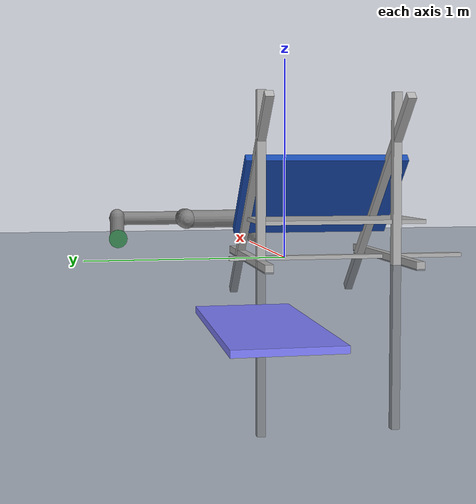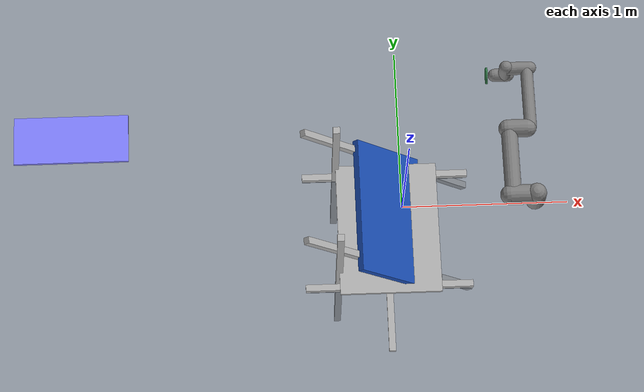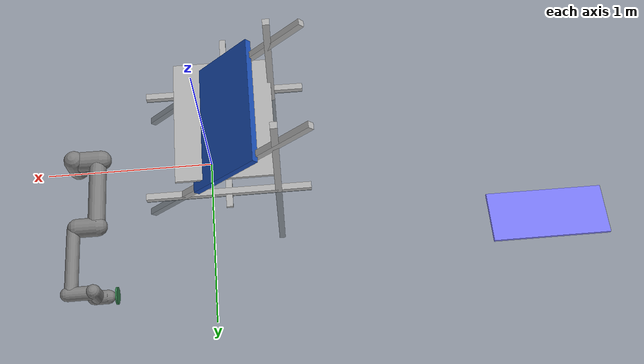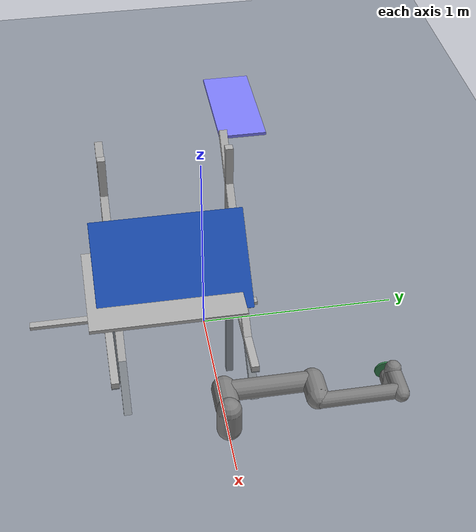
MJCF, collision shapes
<mujoco model="ur5e scene">
  <include file="ur5e.xml"/>
  <option gravity="0 0 -9.81" />
  <statistic center="0.3 0 0.3" extent="0.8" meansize="0.08"/>

  <visual>
    <headlight diffuse="0.6 0.6 0.6" ambient="0.1 0.1 0.1" specular="0 0 0"/>
    <global azimuth="120" elevation="-20"/>
  </visual>

  <asset>
    <texture name="grid" type="2d" builtin="checker" rgb1=".2 .3 .4" rgb2=".1 0.15 0.2" width="512" height="512"
      mark="cross" markrgb=".8 .8 .8"/>
    <material name="grid" texture="grid" texrepeat="1 1" texuniform="true"/>
    <material name="metal_material" rgba="0.7 0.7 0.7 1" specular="0.6" shininess="0.4"/>
    <material name="geom_material" rgba="0.1 0.3 0.7 0.4" specular="0.6" shininess="0.84"/>

  </asset>

  <worldbody>
      <light pos="0 0 10" directional="true"/>
        <body name="slab_mocap" pos="-2 0.5 0.01">
            <joint name="slab_free" type="free"/>
            <geom name="slab" type="box" size="0.35 0.15 0.01" rgba="0.5 0.5 1 0.3" contype="1" conaffinity="1" solimp="0.9 0.95 0.001" solref="0.02 1"/>
        </body>
        <geom type="plane" size="10 10 0.1" rgba="0.5 0.5 0.5 1" pos="0 0 0" contype="1" conaffinity="1" solimp="0.99 0.99 0.01" solref="0.02 1"
      friction="1 0.005 0.0001" material="grid"/>

        <body name="frame_base" pos="-0.1 -0.3 0" quat="0.7 0 0 0.7">
            <inertial pos="0 0 0" mass="1.0" diaginertia="0.001 0.001 0.001"/>
            <geom name="base_beam" type="box" size="0.6 0.02 0.01" pos="0 0 0.01" material="metal_material" contype="1" conaffinity="1"
                  solref="0.02 1" solimp="0.9 0.95 0.01" friction="1 0.005 0.0001"/>
            <geom name="base_stage" type="box" size="0.4 0.3 0.01" pos="0.1 0 0.2" material="metal_material" contype="1" conaffinity="1"
                  solref="0.02 1" solimp="0.9 0.95 0.01" friction="1 0.005 0.0001"/>
            <body name="horizontal_support1" pos="0 0 0.01">
                <inertial pos="0 0 0" mass="1.0" diaginertia="0.001 0.001 0.001"/>
                <geom name="horizontal_beam1" type="box" size="0.02 0.5 0.02" pos="-0.20 0 0" material="metal_material" quat="0.7 0 0.7 0" contype="1" conaffinity="1"
                      solref="0.02 1" solimp="0.9 0.95 0.01" friction="1 0.005 0.0001"/>

                <body name="vertical_support1" pos="0 0 0">
                    <inertial pos="0 0 0" mass="1.0" diaginertia="0.001 0.001 0.001"/>
                    <geom name="vertical_beam1" type="box" size="0.02 0.8 0.02" pos="-0.15 0.3 0" material="metal_material" quat="0 0 0.7 0.7" contype="1" conaffinity="1"
                          solref="0.02 1" solimp="0.9 0.95 0.01" friction="1 0.005 0.0001"/>
                    <body name="angled_bar2" pos="0 0 0.1">
                    <inertial pos="0 0 0" mass="1.0" diaginertia="0.001 0.001 0.001"/>
                    <geom name="angled_beam2" type="box" size="0.02 0.7 0.02" pos="-0.15 0 0.175" quat="0.92 0.38 0 0" material="metal_material" contype="1" conaffinity="1"
                          solref="0.02 1" solimp="0.9 0.95 0.01" friction="1 0.005 0.0001"/>
                    <geom name="some_geom" type="box" size="0.4 0.26 0.02" pos="0.15 0 0.21" quat="0.92 0.38 0 0" material="geom_material" contype="2" conaffinity="2"
                          solref="0.02 1" solimp="0.9 0.95 0.01" friction="1 0.005 0.0001"/>
                </body>

                </body>
            </body>

            <body name="horizontal_support2" pos="0 0 0.01">
                <inertial pos="0 0 0" mass="1.0" diaginertia="0.001 0.001 0.001"/>
                <geom name="horizontal_beam2" type="box" size="0.02 0.5 0.02" pos="0.5 0 0" material="metal_material" quat="-0.7 0 0.7 0" contype="1" conaffinity="1"
                      solref="0.02 1" solimp="0.9 0.95 0.01" friction="1 0.005 0.0001"/>

                <body name="angled_bar3" pos="0.8 0 0.1">
                    <inertial pos="0 0 0" mass="1.0" diaginertia="0.001 0.001 0.001"/>
                    <geom name="angled_beam3" type="box" size="0.02 0.7 0.02" pos="-0.3 0 0.175" quat="0.92 0.38 0 0" material="metal_material" contype="1" conaffinity="1"
                          solref="0.02 1" solimp="0.9 0.95 0.01" friction="1 0.005 0.0001"/>
                </body>

                <body name="vertical_support2" pos="0 0 0">
                    <inertial pos="0 0 0" mass="1.0" diaginertia="0.001 0.001 0.001"/>
                    <geom name="vertical_beam2" type="box" size="0.02 0.8 0.02" pos="0.5 0.3 0" material="metal_material" quat="0 0 -0.7 0.7" contype="1" conaffinity="1"
                          solref="0.02 1" solimp="0.9 0.95 0.01" friction="1 0.005 0.0001"/>
                </body>
            </body>
        </body>
</worldbody>
  <keyframe>
    <key name="home" qpos="-1.5708 -1.5708 1.5708 -1.5708 -1.5708 0 0 1 0.5 0.01 0 0 0 0" ctrl="2.89 -2.07 -1.89 -0.88 -4.97 -0.3 0"/>
  </keyframe>
</mujoco>

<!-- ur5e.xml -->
<mujoco model="ur5e">
  <compiler angle="radian" meshdir="assets" autolimits="true"/>
  <option integrator="implicitfast"/>

  <default>
    <default class="ur5e">
      <material specular="0.5" shininess="0.25"/>
      <joint axis="0 1 0" range="-6.28319 6.28319" armature="0.1"/>
      <general gaintype="fixed" biastype="affine" ctrlrange="-6.2831 6.2831" gainprm="2000" biasprm="0 -2000 -400"
        forcerange="-150 150"/>
      <default class="size3">
        <default class="size3_limited">
          <joint range="-3.1415 3.1415"/>
          <general ctrlrange="-3.1415 3.1415"/>
        </default>
      </default>
      <default class="size1">
        <general gainprm="500" biasprm="0 -500 -100" forcerange="-28 28"/>
      </default>
      <default class="visual">
        <geom type="mesh" contype="0" conaffinity="0" group="2"/>
      </default>
      <default class="collision">
        <geom type="capsule" group="3"/>
        <default class="eef_collision">
          <geom type="cylinder"/>
        </default>
      </default>
      <default class="active_adhesion">
      <geom rgba=".1 0 .5 1" margin=".01" gap=".01" size="3.4 3.4 3.4" />
      </default>

      <site size="0.001" rgba="0.5 0.5 0.5 0.3" group="4"/>
    </default>
  </default>

  <asset>
    <material class="ur5e" name="black" rgba="0.033 0.033 0.033 1"/>
    <material class="ur5e" name="jointgray" rgba="0.278 0.278 0.278 1"/>
    <material class="ur5e" name="linkgray" rgba="0.82 0.82 0.82 1"/>
    <material class="ur5e" name="urblue" rgba="0.49 0.678 0.8 1"/>

    <mesh file="base_0.obj"/>
    <mesh file="base_1.obj"/>
    <mesh file="shoulder_0.obj"/>
    <mesh file="shoulder_1.obj"/>
    <mesh file="shoulder_2.obj"/>
    <mesh file="upperarm_0.obj"/>
    <mesh file="upperarm_1.obj"/>
    <mesh file="upperarm_2.obj"/>
    <mesh file="upperarm_3.obj"/>
    <mesh file="forearm_0.obj"/>
    <mesh file="forearm_1.obj"/>
    <mesh file="forearm_2.obj"/>
    <mesh file="forearm_3.obj"/>
    <mesh file="wrist1_0.obj"/>
    <mesh file="wrist1_1.obj"/>
    <mesh file="wrist1_2.obj"/>
    <mesh file="wrist2_0.obj"/>
    <mesh file="wrist2_1.obj"/>
    <mesh file="wrist2_2.obj"/>
    <mesh file="wrist3.obj"/>
  </asset>

  <worldbody>
    <light name="spotlight" mode="targetbodycom" target="wrist_2_link" pos="0 -1 2"/>
    <body name="base" pos="0.8 0 0" quat="1 0 0 1" childclass="ur5e">
      <inertial mass="4.0" pos="0 0 0" diaginertia="0.00443333156 0.00443333156 0.0072"/>
      <geom mesh="base_0" material="black" class="visual"/>
      <geom mesh="base_1" material="jointgray" class="visual"/>
      <body name="shoulder_link" pos="0 0 0.163">
        <inertial mass="3.7" pos="0 0 0" diaginertia="0.0102675 0.0102675 0.00666"/>
        <joint name="shoulder_pan_joint" class="size3" axis="0 0 1"/>
        <geom mesh="shoulder_0" material="urblue" class="visual"/>
        <geom mesh="shoulder_1" material="black" class="visual"/>
        <geom mesh="shoulder_2" material="jointgray" class="visual"/>
        <geom class="collision" size="0.06 0.06" pos="0 0 -0.04"/>
        <body name="upper_arm_link" pos="0 0.138 0" quat="1 0 1 0">
          <inertial mass="8.393" pos="0 0 0.2125" diaginertia="0.133886 0.133886 0.0151074"/>
          <joint name="shoulder_lift_joint" class="size3"/>
          <geom mesh="upperarm_0" material="linkgray" class="visual"/>
          <geom mesh="upperarm_1" material="black" class="visual"/>
          <geom mesh="upperarm_2" material="jointgray" class="visual"/>
          <geom mesh="upperarm_3" material="urblue" class="visual"/>
          <geom class="collision" pos="0 -0.04 0" quat="1 1 0 0" size="0.06 0.06"/>
          <geom class="collision" size="0.05 0.2" pos="0 0 0.2"/>
          <body name="forearm_link" pos="0 -0.131 0.425">
            <inertial mass="2.275" pos="0 0 0.196" diaginertia="0.0311796 0.0311796 0.004095"/>
            <joint name="elbow_joint" class="size3_limited"/>
            <geom mesh="forearm_0" material="urblue" class="visual"/>
            <geom mesh="forearm_1" material="linkgray" class="visual"/>
            <geom mesh="forearm_2" material="black" class="visual"/>
            <geom mesh="forearm_3" material="jointgray" class="visual"/>
            <geom class="collision" pos="0 0.08 0" quat="1 1 0 0" size="0.055 0.06"/>
            <geom class="collision" size="0.038 0.19" pos="0 0 0.2"/>
            <body name="wrist_1_link" pos="0 0 0.392" quat="1 0 1 0">
              <inertial mass="1.219" pos="0 0.127 0" diaginertia="0.0025599 0.0025599 0.0021942"/>
              <joint name="wrist_1_joint" class="size1"/>
              <geom mesh="wrist1_0" material="black" class="visual"/>
              <geom mesh="wrist1_1" material="urblue" class="visual"/>
              <geom mesh="wrist1_2" material="jointgray" class="visual"/>
              <geom class="collision" pos="0 0.05 0" quat="1 1 0 0" size="0.04 0.07"/>
              <body name="wrist_2_link" pos="0 0.127 0">
                <inertial mass="1.219" pos="0 0 0.1" diaginertia="0.0025599 0.0025599 0.0021942"/>
                <joint name="wrist_2_joint" axis="0 0 1" class="size1"/>
                <geom mesh="wrist2_0" material="black" class="visual"/>
                <geom mesh="wrist2_1" material="urblue" class="visual"/>
                <geom mesh="wrist2_2" material="jointgray" class="visual"/>
                <geom class="collision" size="0.04 0.06" pos="0 0 0.04"/>
                <geom class="collision" pos="0 0.02 0.1" quat="1 1 0 0" size="0.04 0.04"/>
                <body name="wrist_3_link" pos="0 0 0.1">
                  <inertial mass="0.1889" pos="0 0.0771683 0" quat="1 0 0 1"
                    diaginertia="0.000132134 9.90863e-05 9.90863e-05"/>
                  <joint name="wrist_3_joint" class="size1"/>
                  <geom material="linkgray" mesh="wrist3" class="visual"/>
                  <geom name="adhesion_gripper" type="sphere" size="0.001 0.0001 0.01" pos="0 0.08 0" priority="2" margin="0.01" gap="0.01" rgba="0.8 0.5 0.5 1"/>
                  <body name="4boxes" pos=".002 0.12 0" childclass="active_adhesion" quat="1 1 0 0">
                    <joint name="arm3" damping=".01" pos="0 -.03 0"/>
                    <geom type="cylinder" name="eef" size="0.05 0.005" pos="0 0 0.01" quat="1 0 0 0" rgba="0.2 0.5 0.3 1" contype="3" conaffinity="3"/>
                    <site name="attachment_site" pos="0 0 0" quat="1 0 0 0" rgba="1 0 0 1"/>
                    </body>
                </body>
              </body>
            </body>
          </body>
        </body>
      </body>
    </body>
  </worldbody>

  <actuator>
    <general class="size3" name="shoulder_pan" joint="shoulder_pan_joint"/>
    <general class="size3" name="shoulder_lift" joint="shoulder_lift_joint"/>
    <general class="size3_limited" name="elbow" joint="elbow_joint"/>
    <general class="size1" name="wrist_1" joint="wrist_1_joint"/>
    <general class="size1" name="wrist_2" joint="wrist_2_joint"/>
    <general class="size1" name="wrist_3" joint="wrist_3_joint"/>
    <adhesion name="adhere_wrist" body="4boxes" ctrlrange="0 1" gain="1050"/>
  </actuator>
  <sensor>
      <!-- Sensors for Joint Positions -->
      <jointpos name="shoulder_pan_pos" joint="shoulder_pan_joint"/>
      <jointpos name="shoulder_lift_pos" joint="shoulder_lift_joint"/>
      <jointpos name="elbow_pos" joint="elbow_joint"/>
      <jointpos name="wrist_1_pos" joint="wrist_1_joint"/>
      <jointpos name="wrist_2_pos" joint="wrist_2_joint"/>
      <jointpos name="wrist_3_pos" joint="wrist_3_joint"/>

      <!-- Sensors for Joint Velocities -->
      <jointvel name="shoulder_pan_vel" joint="shoulder_pan_joint"/>
      <jointvel name="shoulder_lift_vel" joint="shoulder_lift_joint"/>
      <jointvel name="elbow_vel" joint="elbow_joint"/>
      <jointvel name="wrist_1_vel" joint="wrist_1_joint"/>
      <jointvel name="wrist_2_vel" joint="wrist_2_joint"/>
      <jointvel name="wrist_3_vel" joint="wrist_3_joint"/>

  </sensor>
</mujoco>
